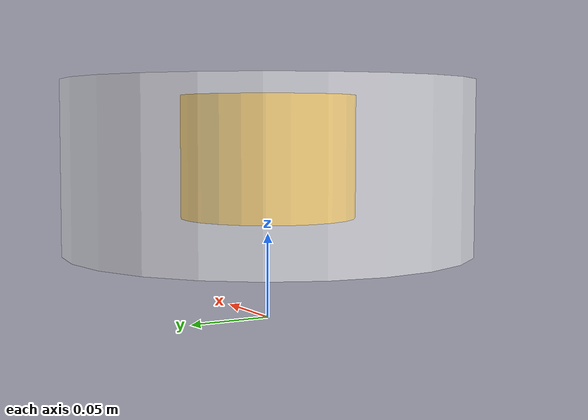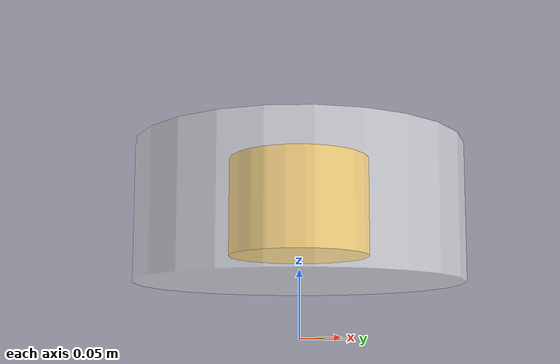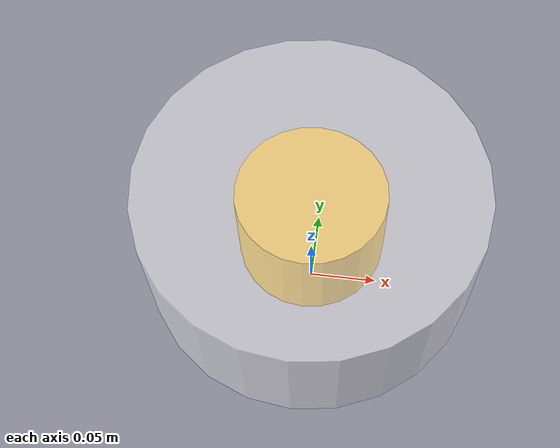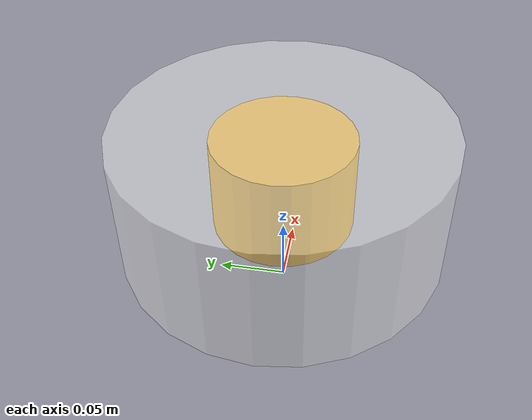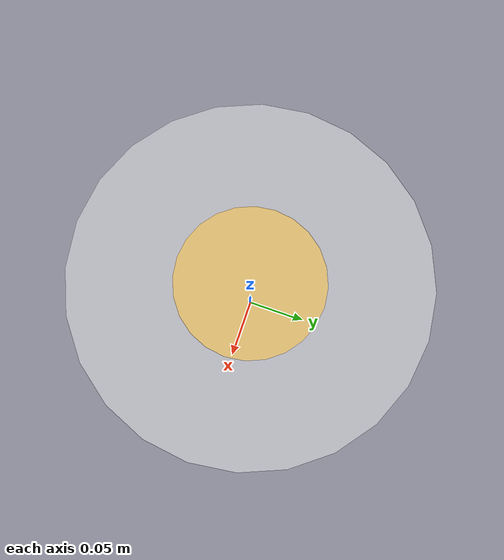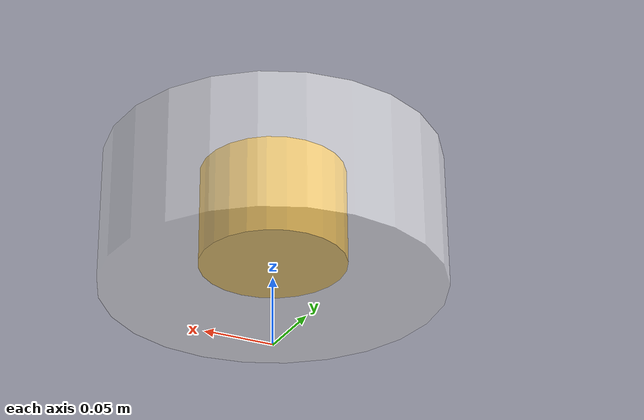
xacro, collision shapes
<?xml version="1.0"?>
<robot xmlns:xacro="http://www.ros.org/wiki/xacro" name="my_car">
  <xacro:include filename="$(find ven_test)/urdf/my_car_de/base_link.urdf.xacro" />
  <xacro:include filename="$(find ven_test)/urdf/velodyne_description/urdf/VLP-16.urdf.xacro" />

  <xacro:VLP-16 />

  <xacro:base_link length="0.12" radius="0.1" />
</robot>

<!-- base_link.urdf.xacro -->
<robot xmlns:xacro="http://www.ros.org/wiki/xacro" >
    <xacro:include filename="$(find ven_test)/urdf/my_car_de/common_inertia.xacro"/>
    <xacro:macro name="base_link" params="length radius">
        <link name="base_link">
            <visual>
                <origin xyz="0 0 0.0" rpy="0 0 0" />
                <geometry>
                    <cylinder radius="${length}" length="${radius}" />
                </geometry>
                <material name="white">
                    <color rgba="1.0 1.0 1.0 0.5" />
                </material>
            </visual>
            <collision>
                <origin xyz="0 0 0.09" rpy="0 0 0" />
                <geometry>
                    <cylinder radius="${length}" length="${radius}" />
                </geometry>
                <material name="white">
                    <color rgba="1.0 1.0 1.0 0.5" />
                </material>
            </collision>
            <xacro:cylinder_inertia m="1.0" r="${radius}" h="${length}"/>
        </link>
    </xacro:macro>
</robot>

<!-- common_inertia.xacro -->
<robot xmlns:xacro="http://www.ros.org/wiki/xacro">
    <xacro:macro  name="box_inertia" params="m w h d">
        <inertial>
            <mass value="${m}"/>
            <inertia ixx="${(m/12)*(h*h+d*d)}" ixy="0.0" ixz="0.0" iyy="${(m/12)*(w*w+d*d)}" iyz="0.0" izz="${(m/12)*(h*h+w*w)}"/>
        </inertial>
    </xacro:macro>

    <xacro:macro  name="cylinder_inertia" params="m r h">
        <inertial>
            <mass value="${m}"/>
            <inertia ixx="${(m/12)*(3*r*r+h*h)}" ixy="0.0" ixz="0.0" iyy="${(m/12)*(3*r*r+h*h)}" iyz="0.0" izz="${(m/2)*(r*r)}"/>
        </inertial>
    </xacro:macro>

    <xacro:macro name="sphere_inertia" params="radius m">
        <inertial>
            <mass value="${m}"/>
            <inertia ixx="${(2/5)*m*(r*r)" ixy="0.0" ixz="0.0" iyy="${(2/5)*m*(r*r)" iyz="0.0" izz="${(2/5)*m*(r*r)"/>
        </inertial>
    </xacro:macro>
</robot>

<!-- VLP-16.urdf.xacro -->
<robot xmlns:xacro="http://www.ros.org/wiki/xacro" name="VLP-16">
  <xacro:property name="M_PI" value="3.1415926535897931" />
  <xacro:macro name="VLP-16" params=" parent:=base_link name:=velodyne tf_prefix:='' topic:=/velodyne_points organize_cloud:=false hz:=10 lasers:=16 samples:=1875 collision_range:=0.3 min_range:=0.9 max_range:=130.0 noise:=0.008 min_angle:=-${M_PI} max_angle:=${M_PI} gpu:=false">

    <joint name="${name}_base_mount_joint" type="fixed">
      <origin xyz="0 0 0.06"/>
      <parent link="${parent}"/>
      <child link="${name}_base_link"/>
    </joint>

    <link name="${name}_base_link">
      <inertial>
        <mass value="0.83"/>
        <origin xyz="0 0 0.03585"/>
        <inertia ixx="${(0.83 * (3.0*0.0516*0.0516 + 0.0717*0.0717)) / 12.0}" ixy="0" ixz="0"
          iyy="${(0.83 * (3.0*0.0516*0.0516 + 0.0717*0.0717)) / 12.0}" iyz="0"
          izz="${0.5 * 0.83 * (0.0516*0.0516)}"/>
      </inertial>
      <visual>
        <geometry>
          <mesh filename="package://velodyne_description/meshes/VLP16_base_1.dae" />
        </geometry>
      </visual>
      <visual>
        <geometry>
          <mesh filename="package://velodyne_description/meshes/VLP16_base_2.dae" />
        </geometry>
      </visual>
      <collision>
        <origin rpy="0 0 0" xyz="0 0 0.03585"/>
        <geometry>
          <cylinder radius="0.0516" length="0.0717"/>
        </geometry>
      </collision>
    </link>

    <joint name="${name}_base_scan_joint" type="fixed" >
      <origin xyz="0 0 0.0377" rpy="0 0 0" />
      <parent link="${name}_base_link" />
      <child link="${name}"/>
    </joint>

    <link name="${name}">
      <inertial>
        <mass value="0.01"/>
        <origin xyz="0 0 0"/>
        <inertia ixx="1e-7" ixy="0" ixz="0" iyy="1e-7" iyz="0" izz="1e-7"/>
      </inertial>
      <visual>
        <origin xyz="0 0 -0.0377" />
        <geometry>
          <mesh filename="package://velodyne_description/meshes/VLP16_scan.dae" />
        </geometry>
      </visual>
      <collision>
        <geometry>
          <sphere radius="0"/>
        </geometry>
      </collision>
    </link>

    <!-- Gazebo requires the velodyne_gazebo_plugins package -->
    <gazebo reference="${name}">
      <xacro:if value="${gpu}">
        <sensor type="gpu_ray" name="${name}-VLP16">
          <pose>0 0 0 0 0 0</pose>
          <visualize>false</visualize>
          <update_rate>${hz}</update_rate>
          <ray>
            <scan>
              <horizontal>
                <samples>${samples}</samples>
                <resolution>1</resolution>
                <min_angle>${min_angle}</min_angle>
                <max_angle>${max_angle}</max_angle>
              </horizontal>
              <vertical>
                <samples>${lasers}</samples>
                <resolution>1</resolution>
                <min_angle>-${15.0*M_PI/180.0}</min_angle>
                <max_angle> ${15.0*M_PI/180.0}</max_angle>
              </vertical>
            </scan>
            <range>
              <min>${collision_range}</min>
              <max>${max_range+1}</max>
              <resolution>0.001</resolution>
            </range>
            <noise>
              <type>gaussian</type>
              <mean>0.0</mean>
              <stddev>0.0</stddev>
            </noise>
          </ray>
          <plugin name="gazebo_ros_laser_controller" filename="libgazebo_ros_velodyne_laser.so">
            <ros>
              <namespace>/${name}</namespace>
              <remapping>~/out:=${topic}</remapping>
            </ros>
            <tf_prefix>${tf_prefix}</tf_prefix>
            <frame_name>${name}</frame_name>
            <organize_cloud>${organize_cloud}</organize_cloud>
            <min_range>${min_range}</min_range>
            <max_range>${max_range}</max_range>
            <gaussian_noise>${noise}</gaussian_noise>
          </plugin>
        </sensor>
      </xacro:if>
      <xacro:unless value="${gpu}">
        <sensor type="ray" name="${name}-VLP16">
          <pose>0 0 0 0 0 0</pose>
          <visualize>false</visualize>
          <update_rate>${hz}</update_rate>
          <ray>
            <scan>
              <horizontal>
                <samples>${samples}</samples>
                <resolution>1</resolution>
                <min_angle>${min_angle}</min_angle>
                <max_angle>${max_angle}</max_angle>
              </horizontal>
              <vertical>
                <samples>${lasers}</samples>
                <resolution>1</resolution>
                <min_angle>-${15.0*M_PI/180.0}</min_angle>
                <max_angle> ${15.0*M_PI/180.0}</max_angle>
              </vertical>
            </scan>
            <range>
              <min>${collision_range}</min>
              <max>${max_range+1}</max>
              <resolution>0.001</resolution>
            </range>
            <noise>
              <type>gaussian</type>
              <mean>0.0</mean>
              <stddev>0.0</stddev>
            </noise>
          </ray>
          <plugin name="gazebo_ros_laser_controller" filename="libgazebo_ros_velodyne_laser.so">
            <ros>
              <namespace>/${name}</namespace>
              <remapping>~/out:=${topic}</remapping>
            </ros>
            <tf_prefix>${tf_prefix}</tf_prefix>
            <frame_name>${name}</frame_name>
            <organize_cloud>${organize_cloud}</organize_cloud>
            <min_range>${min_range}</min_range>
            <max_range>${max_range}</max_range>
            <gaussian_noise>${noise}</gaussian_noise>
          </plugin>
        </sensor>
      </xacro:unless>
    </gazebo>

  </xacro:macro>
</robot>
